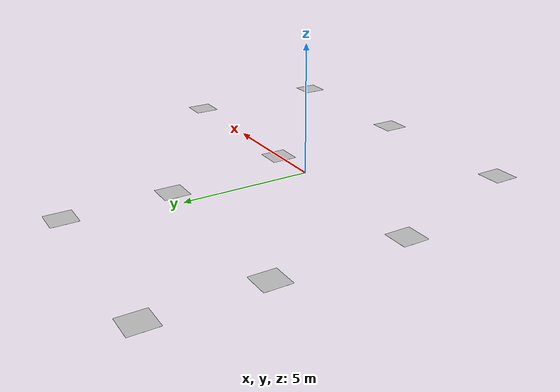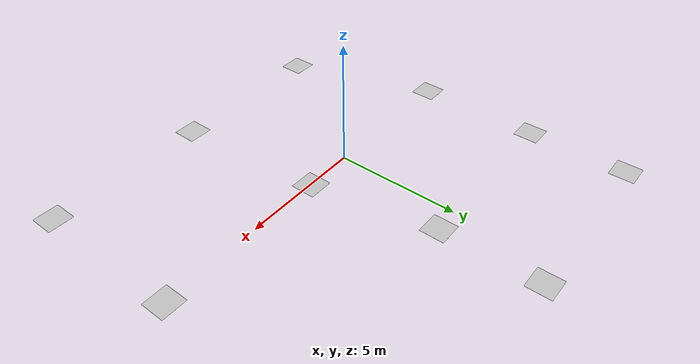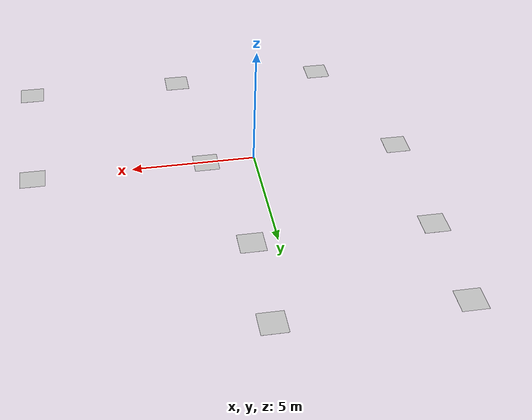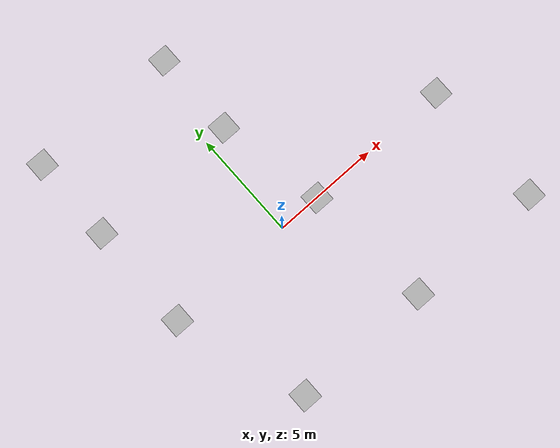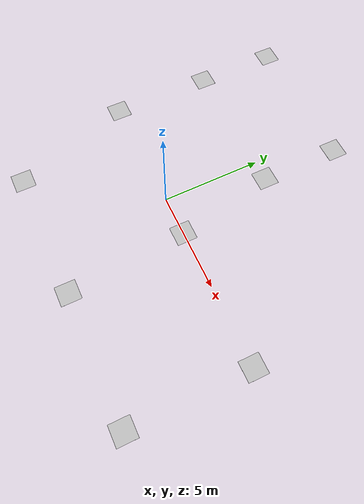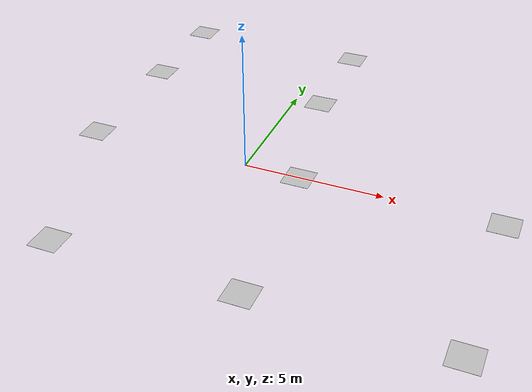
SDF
<sdf version="1.5">
 <world name="default">
  <include><uri>model://arrow</uri><name>arrow_1</name><pose>-4 -6 0 0 0 0</pose></include>
  <include><uri>model://arrow</uri><name>arrow_2</name><pose>2.5 -6 0 0 0 0</pose></include>
  <include><uri>model://arrow</uri><name>arrow_3</name><pose>9 -6 0 0 0 1.57</pose></include>
  <include><uri>model://arrow</uri><name>arrow_4</name><pose>9 0 0 0 0 3.14</pose></include>
  <include><uri>model://arrow</uri><name>arrow_5</name><pose>2 0 0 0 0 3.14</pose></include>
  <include><uri>model://arrow</uri><name>arrow_6</name><pose>-6 0 0 0 0 1.57</pose></include>
  <include><uri>model://arrow</uri><name>arrow_7</name><pose>-6 5 0 0 0 0</pose></include>
  <include><uri>model://arrow</uri><name>arrow_8</name><pose>1 5 0 0 0 1.57</pose></include>
  <include><uri>model://arrow</uri><name>arrow_9</name><pose>1 9 0 0 0 3.14</pose></include>
  <include><uri>model://arrow</uri><name>arrow_10</name><pose>-6 9 0 0 0 3.14</pose></include>
  <include><uri>model://sun</uri></include>
  <physics name="default_physics" default="0" type="ode">
   <gravity>0 0 -9.8066</gravity>
   <ode>
    <solver>
     <type>quick</type>
     <iters>10</iters>
     <sor>1.3</sor>
     <use_dynamic_moi_rescaling>0</use_dynamic_moi_rescaling>
    </solver>
    <constraints>
     <cfm>0</cfm>
     <erp>0.2</erp>
     <contact_max_correcting_vel>100</contact_max_correcting_vel>
     <contact_surface_layer>0.001</contact_surface_layer>
    </constraints>
   </ode>
   <max_step_size>0.004</max_step_size>
   <real_time_factor>1</real_time_factor>
   <real_time_update_rate>250</real_time_update_rate>
   <magnetic_field>6.0e-6 2.3e-5 -4.2e-5</magnetic_field>
  </physics>
 </world>
</sdf>

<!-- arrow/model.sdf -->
<sdf version='1.4'>
  <model name='arrow'>
    <static>true</static>
    <link name='link'>
      <collision name='collision'>
        <geometry>
          <plane>
            <normal>0 0 1</normal>
            <size>1 1</size>
          </plane>
        </geometry>
        <surface>
          <friction>
            <ode>
              <mu>0.5</mu>
              <mu2>.5</mu2>
            </ode>
          </friction>
        </surface>
      </collision>

      <visual name='visual_0'>
        <pose>0 0 0 0 0 0</pose>

        <cast_shadows>false</cast_shadows>
        <geometry>
          <plane>
            <normal>0 0 1</normal>
            <size>1 1</size>
          </plane>
        </geometry>
        <material>
          <script>
            <uri>model://arrow/materials/scripts</uri>
            <uri>model://arrow/materials/textures</uri>
            <name>vrc/arrow</name>
          </script>
        </material>
      </visual>
    </link>
  </model>
</sdf>
